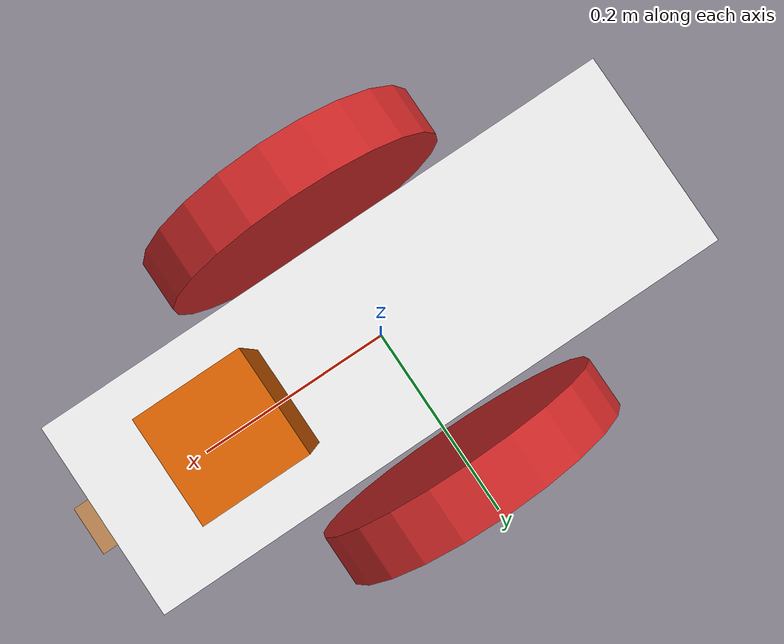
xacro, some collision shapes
<?xml version='1.0'?>

<robot name="my_robot" xmlns:xacro="http://www.ros.org/wiki/xacro">
  <!-- Import plugin -->
  <xacro:include filename="$(find my_robot)/urdf/my_robot.gazebo" />

  <!-- Robot footprint link -->
  <link name="robot_footprint"></link>

  <!-- Robot footprint joint -->
  <joint name="robot_footprint_joint" type="fixed">
    <origin xyz="0 0 0" rpy="0 0 0" />
    <parent link="robot_footprint"/>
    <child link="chassis" />
  </joint>

  <!-- Chassis link -->
  <link name='chassis'>
    <!-- Chassis -->
    <inertial>
      <mass value="15.0"/>
      <origin xyz="0.0 0 0" rpy=" 0 0 0"/>
      <inertia
          ixx="0.1" ixy="0" ixz="0"
          iyy="0.1" iyz="0"
          izz="0.1"
      />
    </inertial>

    <collision name='chassis_collision'>
      <origin xyz="0 0 0" rpy=" 0 0 0"/>
      <geometry>
        <box size=".6 .2 .1"/>
      </geometry>
    </collision>

    <visual name='chassis_visual'>
      <origin xyz="0 0 0" rpy=" 0 0 0"/>
      <geometry>
        <box size=".6 .2 .1"/>
      </geometry>
    </visual>

    <!-- Back caster wheel -->
    <collision name='back_caster_collision'>
      <origin xyz="-0.15 0 -0.05" rpy=" 0 0 0"/>
      <geometry>
        <sphere radius="0.0999"/>
      </geometry>
    </collision>

    <visual name='back_caster_visual'>
      <origin xyz="-0.15 0 -0.05" rpy=" 0 0 0"/>
      <geometry>
        <sphere radius="0.1"/>
      </geometry>
    </visual>

    <!-- Front caster wheel -->
    <collision name='front_caster_collision'>
      <origin xyz="0.15 0 -0.05" rpy=" 0 0 0"/>
      <geometry>
        <sphere radius="0.0999"/>
      </geometry>
    </collision>

    <visual name='front_caster_visual'>
      <origin xyz="0.15 0 -0.05" rpy=" 0 0 0"/>
      <geometry>
        <sphere radius="0.1"/>
      </geometry>
    </visual>
  </link>

  <!-- Chassis color -->
  <gazebo reference="chassis">
    <material>Gazebo/White</material>
  </gazebo>

  <!-- Left wheel link -->
  <link name = "left_wheel">
    <collision name='Left_wheel_collision'>
      <origin xyz="0 0 0" rpy=" 0 1.5707 1.5707"/>
      <geometry>
        <cylinder radius="0.15" length = "0.05"/>
      </geometry>
    </collision>

    <visual name='left_wheel_visual'>
      <origin xyz="0 0 0" rpy=" 0 1.5707 1.5707"/>
      <geometry>
        <cylinder radius="0.15" length = "0.05"/>
      </geometry>
    </visual>

  <inertial>
      <mass value="5"/>
      <origin xyz="0.0 0 0" rpy=" 0 1.5707 1.5707"/>
      <inertia
          ixx="0.1" ixy="0" ixz="0"
          iyy="0.1" iyz="0"
          izz="0.1"
      />
    </inertial>
  </link>

  <!-- Left wheel color -->
  <gazebo reference="left_wheel">
    <material>Gazebo/RedTransparent</material>
  </gazebo>

  <!-- Left wheel joint -->
  <joint type="continuous" name="left_wheel_hinge">
    <origin xyz="0 0.15 0" rpy="0 0 0"/>
    <child link="left_wheel"/>
    <parent link="chassis"/>
    <axis xyz="0 1 0" rpy="0 0 0"/>
    <limit effort="10000" velocity="1000"/>
    <dynamics damping="1.0" friction="1.0"/>
  </joint>

  <!-- Right wheel link -->
  <link name = "right_wheel">
    <collision name='right_wheel_collision'>
      <origin xyz="0 0 0" rpy=" 0 1.5707 1.5707"/>
      <geometry>
        <cylinder radius="0.15" length = "0.05"/>
      </geometry>
    </collision>

    <visual name='right_wheel_visual'>
      <origin xyz="0 0 0" rpy=" 0 1.5707 1.5707"/>
      <geometry>
        <cylinder radius="0.15" length = "0.05"/>
      </geometry>
    </visual>

  <inertial>
      <mass value="5"/>
      <origin xyz="0.0 0 0" rpy=" 0 1.5707 1.5707"/>
      <inertia
          ixx="0.1" ixy="0" ixz="0"
          iyy="0.1" iyz="0"
          izz="0.1"
      />
    </inertial>
  </link>

  <!-- Right wheel color -->
  <gazebo reference="right_wheel">
    <material>Gazebo/RedTransparent</material>
  </gazebo>

  <!-- Right wheel joint -->
  <joint type="continuous" name="right_wheel_hinge">
    <origin xyz="0 -0.15 0" rpy="0 0 0"/>
    <child link="right_wheel"/>
    <parent link="chassis"/>
    <axis xyz="0 1 0" rpy="0 0 0"/>
    <limit effort="10000" velocity="1000"/>
    <dynamics damping="1.0" friction="1.0"/>
  </joint>

  <!-- Camera link -->
  <link name="camera">
    <visual name='camera_visual'>
      <origin xyz="0 0 0" rpy=" 0 0 0"/>
      <geometry>
        <box size="0.05 0.05 0.05"/>
      </geometry>
    </visual>

    <collision name='camera_collision'>
      <origin xyz="0 0 0" rpy=" 0 0 0"/>
      <geometry>
        <box size="0.05 0.05 0.05"/>
      </geometry>
    </collision>

    <inertial>
        <mass value="0.1"/>
        <origin xyz="0 0 0" rpy="0 0 0"/>
        <inertia
            ixx="1e-6" ixy="0" ixz="0"
            iyy="1e-6" iyz="0"
            izz="1e-6"
        />
    </inertial>
  </link>

  <!-- Camera color -->
  <gazebo reference="camera">
    <material>Gazebo/Wood</material>
  </gazebo>

  <!-- Camera joint -->
  <joint name="camera_joint" type="fixed">
    <origin xyz="0.3 0 0" rpy="0 0 0"/>
    <axis xyz="0 1 0"/>
    <parent link="chassis"/>
    <child link="camera"/>
  </joint>

  <!-- Hokuyo link-->
  <link name="hokuyo">
    <visual name="hokuyo_visual">
      <origin xyz="0 0 0" rpy="0 0 0"/>
      <geometry>
        <mesh filename="package://my_robot/mesh/hokuyo.dae"/>
      </geometry>
    </visual>

    <collision name="hokuyo_collision">
      <origin xyz="0 0 0" rpy="0 0 0"/>
      <geometry>
        <box size="0.1 0.1 0.1"/>
      </geometry>
    </collision>

    <inertial>
      <mass value="1e-5"/>
      <origin xyz="0 0 0" rpy="0 0 0"/>
      <inertia
            ixx="1e-6" ixy="0" ixz="0"
            iyy="1e-6" iyz="0"
            izz="1e-6"
      />
    </inertial>
  </link>

  <!-- Hokuyo joint -->
  <joint name="hokuyo_joint" type="fixed">
    <axis xyz="0 1 0"/>
    <origin xyz="0.15 0 0.1" rpy="0 0 0"/>
    <parent link="chassis"/>
    <child link="hokuyo"/>
  </joint>

</robot>
